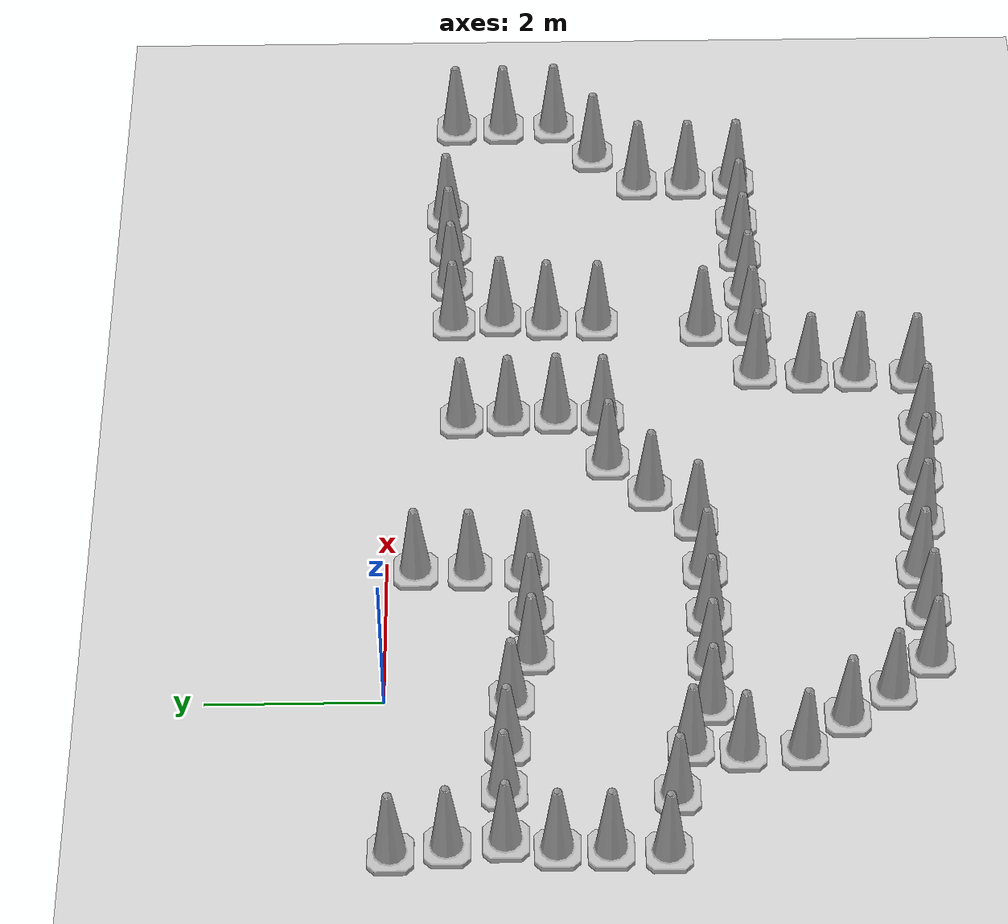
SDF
<sdf version="1.7">
 <world name="default">
  <model name="ground_plane">
   <static>1</static>
   <link name="link">
    <collision name="collision">
     <geometry><plane><normal>0 0 1</normal><size>100 100</size></plane></geometry>
     <surface>
      <contact><collide_bitmask>65535</collide_bitmask></contact>
      <friction><ode><mu>100</mu><mu2>50</mu2></ode></friction>
     </surface>
    </collision>
    <visual name="visual">
     <cast_shadows>0</cast_shadows>
     <geometry><plane><normal>0 0 1</normal><size>100 100</size></plane></geometry>
     <material>
      <script><uri>file://media/materials/scripts/gazebo.material</uri><name>Gazebo/Grey</name></script>
     </material>
    </visual>
   </link>
  </model>
  <model name="Construction Cone">
   <link name="link">
    <collision name="collision">
     <geometry>
      <mesh><scale>10 10 10</scale><uri>model://construction_cone/meshes/construction_cone.dae</uri></mesh>
     </geometry>
    </collision>
    <visual name="visual">
     <geometry>
      <mesh><scale>10 10 10</scale><uri>model://construction_cone/meshes/construction_cone.dae</uri></mesh>
     </geometry>
    </visual>
    <inertial>
     <inertia><ixx>1</ixx><ixy>0</ixy><ixz>0</ixz><iyy>1</iyy><iyz>0</iyz><izz>1</izz></inertia>
     <mass>1</mass>
    </inertial>
   </link>
   <pose>-0.005243 -1.40875 -0 0 -1e-06 0</pose>
  </model>
  <model name="Construction Cone_0">
   <link name="link">
    <collision name="collision">
     <geometry>
      <mesh><scale>10 10 10</scale><uri>model://construction_cone/meshes/construction_cone.dae</uri></mesh>
     </geometry>
    </collision>
    <visual name="visual">
     <geometry>
      <mesh><scale>10 10 10</scale><uri>model://construction_cone/meshes/construction_cone.dae</uri></mesh>
     </geometry>
    </visual>
    <inertial>
     <inertia><ixx>1</ixx><ixy>0</ixy><ixz>0</ixz><iyy>1</iyy><iyz>0</iyz><izz>1</izz></inertia>
     <mass>1</mass>
    </inertial>
   </link>
   <pose>1.20298 -1.63455 -0 0 -1e-06 0</pose>
  </model>
  <model name="Construction Cone_1">
   <link name="link">
    <collision name="collision">
     <geometry>
      <mesh><scale>10 10 10</scale><uri>model://construction_cone/meshes/construction_cone.dae</uri></mesh>
     </geometry>
    </collision>
    <visual name="visual">
     <geometry>
      <mesh><scale>10 10 10</scale><uri>model://construction_cone/meshes/construction_cone.dae</uri></mesh>
     </geometry>
    </visual>
    <inertial>
     <inertia><ixx>1</ixx><ixy>0</ixy><ixz>0</ixz><iyy>1</iyy><iyz>0</iyz><izz>1</izz></inertia>
     <mass>1</mass>
    </inertial>
   </link>
   <pose>1.82506 -1.59296 -0 0 -0 0</pose>
  </model>
  <model name="Construction Cone_2">
   <link name="link">
    <collision name="collision">
     <geometry>
      <mesh><scale>10 10 10</scale><uri>model://construction_cone/meshes/construction_cone.dae</uri></mesh>
     </geometry>
    </collision>
    <visual name="visual">
     <geometry>
      <mesh><scale>10 10 10</scale><uri>model://construction_cone/meshes/construction_cone.dae</uri></mesh>
     </geometry>
    </visual>
    <inertial>
     <inertia><ixx>1</ixx><ixy>0</ixy><ixz>0</ixz><iyy>1</iyy><iyz>0</iyz><izz>1</izz></inertia>
     <mass>1</mass>
    </inertial>
   </link>
   <pose>0.620982 -1.63538 -0 0 -0 0</pose>
  </model>
  <model name="Construction Cone_3">
   <link name="link">
    <collision name="collision">
     <geometry>
      <mesh><scale>10 10 10</scale><uri>model://construction_cone/meshes/construction_cone.dae</uri></mesh>
     </geometry>
    </collision>
    <visual name="visual">
     <geometry>
      <mesh><scale>10 10 10</scale><uri>model://construction_cone/meshes/construction_cone.dae</uri></mesh>
     </geometry>
    </visual>
    <inertial>
     <inertia><ixx>1</ixx><ixy>0</ixy><ixz>0</ixz><iyy>1</iyy><iyz>0</iyz><izz>1</izz></inertia>
     <mass>1</mass>
    </inertial>
   </link>
   <pose>-0.64154 -1.35793 -0 0 -1e-06 0</pose>
  </model>
  <model name="Construction Cone_4">
   <link name="link">
    <collision name="collision">
     <geometry>
      <mesh><scale>10 10 10</scale><uri>model://construction_cone/meshes/construction_cone.dae</uri></mesh>
     </geometry>
    </collision>
    <visual name="visual">
     <geometry>
      <mesh><scale>10 10 10</scale><uri>model://construction_cone/meshes/construction_cone.dae</uri></mesh>
     </geometry>
    </visual>
    <inertial>
     <inertia><ixx>1</ixx><ixy>0</ixy><ixz>0</ixz><iyy>1</iyy><iyz>0</iyz><izz>1</izz></inertia>
     <mass>1</mass>
    </inertial>
   </link>
   <pose>-1.24859 -1.32205 -0 0 -0 0</pose>
  </model>
  <model name="Construction Cone_5">
   <link name="link">
    <collision name="collision">
     <geometry>
      <mesh><scale>10 10 10</scale><uri>model://construction_cone/meshes/construction_cone.dae</uri></mesh>
     </geometry>
    </collision>
    <visual name="visual">
     <geometry>
      <mesh><scale>10 10 10</scale><uri>model://construction_cone/meshes/construction_cone.dae</uri></mesh>
     </geometry>
    </visual>
    <inertial>
     <inertia><ixx>1</ixx><ixy>0</ixy><ixz>0</ixz><iyy>1</iyy><iyz>0</iyz><izz>1</izz></inertia>
     <mass>1</mass>
    </inertial>
   </link>
   <pose>-1.91656 -1.33623 -0 -0 -0 -0</pose>
  </model>
  <model name="Construction Cone_6">
   <link name="link">
    <collision name="collision">
     <geometry>
      <mesh><scale>10 10 10</scale><uri>model://construction_cone/meshes/construction_cone.dae</uri></mesh>
     </geometry>
    </collision>
    <visual name="visual">
     <geometry>
      <mesh><scale>10 10 10</scale><uri>model://construction_cone/meshes/construction_cone.dae</uri></mesh>
     </geometry>
    </visual>
    <inertial>
     <inertia><ixx>1</ixx><ixy>0</ixy><ixz>0</ixz><iyy>1</iyy><iyz>0</iyz><izz>1</izz></inertia>
     <mass>1</mass>
    </inertial>
   </link>
   <pose>-1.98763 -0.706466 -0 0 -0 0</pose>
  </model>
  <model name="Construction Cone_7">
   <link name="link">
    <collision name="collision">
     <geometry>
      <mesh><scale>10 10 10</scale><uri>model://construction_cone/meshes/construction_cone.dae</uri></mesh>
     </geometry>
    </collision>
    <visual name="visual">
     <geometry>
      <mesh><scale>10 10 10</scale><uri>model://construction_cone/meshes/construction_cone.dae</uri></mesh>
     </geometry>
    </visual>
    <inertial>
     <inertia><ixx>1</ixx><ixy>0</ixy><ixz>0</ixz><iyy>1</iyy><iyz>0</iyz><izz>1</izz></inertia>
     <mass>1</mass>
    </inertial>
   </link>
   <pose>-2.06657 -0.099365 -0 0 -0 0</pose>
  </model>
  <model name="Construction Cone_10">
   <link name="link">
    <collision name="collision">
     <geometry>
      <mesh><scale>10 10 10</scale><uri>model://construction_cone/meshes/construction_cone.dae</uri></mesh>
     </geometry>
    </collision>
    <visual name="visual">
     <geometry>
      <mesh><scale>10 10 10</scale><uri>model://construction_cone/meshes/construction_cone.dae</uri></mesh>
     </geometry>
    </visual>
    <inertial>
     <inertia><ixx>1</ixx><ixy>0</ixy><ixz>0</ixz><iyy>1</iyy><iyz>0</iyz><izz>1</izz></inertia>
     <mass>1</mass>
    </inertial>
   </link>
   <pose>1.85068 -0.9436 -0 0 -0 0</pose>
  </model>
  <model name="Construction Cone_11">
   <link name="link">
    <collision name="collision">
     <geometry>
      <mesh><scale>10 10 10</scale><uri>model://construction_cone/meshes/construction_cone.dae</uri></mesh>
     </geometry>
    </collision>
    <visual name="visual">
     <geometry>
      <mesh><scale>10 10 10</scale><uri>model://construction_cone/meshes/construction_cone.dae</uri></mesh>
     </geometry>
    </visual>
    <inertial>
     <inertia><ixx>1</ixx><ixy>0</ixy><ixz>0</ixz><iyy>1</iyy><iyz>0</iyz><izz>1</izz></inertia>
     <mass>1</mass>
    </inertial>
   </link>
   <pose>1.8693 -0.324364 -0 0 -0 0</pose>
  </model>
  <model name="Construction Cone_32">
   <link name="link">
    <collision name="collision">
     <geometry>
      <mesh><scale>10 10 10</scale><uri>model://construction_cone/meshes/construction_cone.dae</uri></mesh>
     </geometry>
    </collision>
    <visual name="visual">
     <geometry>
      <mesh><scale>10 10 10</scale><uri>model://construction_cone/meshes/construction_cone.dae</uri></mesh>
     </geometry>
    </visual>
    <inertial>
     <inertia><ixx>1</ixx><ixy>0</ixy><ixz>0</ixz><iyy>1</iyy><iyz>0</iyz><izz>1</izz></inertia>
     <mass>1</mass>
    </inertial>
   </link>
   <pose>4.18784 -0.837495 -0 0 -0 0</pose>
  </model>
  <model name="Construction Cone_33">
   <link name="link">
    <collision name="collision">
     <geometry>
      <mesh><scale>10 10 10</scale><uri>model://construction_cone/meshes/construction_cone.dae</uri></mesh>
     </geometry>
    </collision>
    <visual name="visual">
     <geometry>
      <mesh><scale>10 10 10</scale><uri>model://construction_cone/meshes/construction_cone.dae</uri></mesh>
     </geometry>
    </visual>
    <inertial>
     <inertia><ixx>1</ixx><ixy>0</ixy><ixz>0</ixz><iyy>1</iyy><iyz>0</iyz><izz>1</izz></inertia>
     <mass>1</mass>
    </inertial>
   </link>
   <pose>4.21705 -1.39268 -0 0 -0 0</pose>
  </model>
  <model name="Construction Cone_34">
   <link name="link">
    <collision name="collision">
     <geometry>
      <mesh><scale>10 10 10</scale><uri>model://construction_cone/meshes/construction_cone.dae</uri></mesh>
     </geometry>
    </collision>
    <visual name="visual">
     <geometry>
      <mesh><scale>10 10 10</scale><uri>model://construction_cone/meshes/construction_cone.dae</uri></mesh>
     </geometry>
    </visual>
    <inertial>
     <inertia><ixx>1</ixx><ixy>0</ixy><ixz>0</ixz><iyy>1</iyy><iyz>0</iyz><izz>1</izz></inertia>
     <mass>1</mass>
    </inertial>
   </link>
   <pose>4.23931 -1.95743 -0 0 -0 0</pose>
  </model>
  <model name="Construction Cone_35">
   <link name="link">
    <collision name="collision">
     <geometry>
      <mesh><scale>10 10 10</scale><uri>model://construction_cone/meshes/construction_cone.dae</uri></mesh>
     </geometry>
    </collision>
    <visual name="visual">
     <geometry>
      <mesh><scale>10 10 10</scale><uri>model://construction_cone/meshes/construction_cone.dae</uri></mesh>
     </geometry>
    </visual>
    <inertial>
     <inertia><ixx>1</ixx><ixy>0</ixy><ixz>0</ixz><iyy>1</iyy><iyz>0</iyz><izz>1</izz></inertia>
     <mass>1</mass>
    </inertial>
   </link>
   <pose>4.21293 -2.50767 -0 0 -0 0</pose>
  </model>
  <model name="Construction Cone_36">
   <link name="link">
    <collision name="collision">
     <geometry>
      <mesh><scale>10 10 10</scale><uri>model://construction_cone/meshes/construction_cone.dae</uri></mesh>
     </geometry>
    </collision>
    <visual name="visual">
     <geometry>
      <mesh><scale>10 10 10</scale><uri>model://construction_cone/meshes/construction_cone.dae</uri></mesh>
     </geometry>
    </visual>
    <inertial>
     <inertia><ixx>1</ixx><ixy>0</ixy><ixz>0</ixz><iyy>1</iyy><iyz>0</iyz><izz>1</izz></inertia>
     <mass>1</mass>
    </inertial>
   </link>
   <pose>3.50327 -2.5545 -0 0 -0 0</pose>
  </model>
  <model name="Construction Cone_37">
   <link name="link">
    <collision name="collision">
     <geometry>
      <mesh><scale>10 10 10</scale><uri>model://construction_cone/meshes/construction_cone.dae</uri></mesh>
     </geometry>
    </collision>
    <visual name="visual">
     <geometry>
      <mesh><scale>10 10 10</scale><uri>model://construction_cone/meshes/construction_cone.dae</uri></mesh>
     </geometry>
    </visual>
    <inertial>
     <inertia><ixx>1</ixx><ixy>0</ixy><ixz>0</ixz><iyy>1</iyy><iyz>0</iyz><izz>1</izz></inertia>
     <mass>1</mass>
    </inertial>
   </link>
   <pose>3.01779 -3.03425 -0 0 -0 0</pose>
  </model>
  <model name="Construction Cone_38">
   <link name="link">
    <collision name="collision">
     <geometry>
      <mesh><scale>10 10 10</scale><uri>model://construction_cone/meshes/construction_cone.dae</uri></mesh>
     </geometry>
    </collision>
    <visual name="visual">
     <geometry>
      <mesh><scale>10 10 10</scale><uri>model://construction_cone/meshes/construction_cone.dae</uri></mesh>
     </geometry>
    </visual>
    <inertial>
     <inertia><ixx>1</ixx><ixy>0</ixy><ixz>0</ixz><iyy>1</iyy><iyz>0</iyz><izz>1</izz></inertia>
     <mass>1</mass>
    </inertial>
   </link>
   <pose>2.55423 -3.55356 -0 0 -0 0</pose>
  </model>
  <model name="Construction Cone_39">
   <link name="link">
    <collision name="collision">
     <geometry>
      <mesh><scale>10 10 10</scale><uri>model://construction_cone/meshes/construction_cone.dae</uri></mesh>
     </geometry>
    </collision>
    <visual name="visual">
     <geometry>
      <mesh><scale>10 10 10</scale><uri>model://construction_cone/meshes/construction_cone.dae</uri></mesh>
     </geometry>
    </visual>
    <inertial>
     <inertia><ixx>1</ixx><ixy>0</ixy><ixz>0</ixz><iyy>1</iyy><iyz>0</iyz><izz>1</izz></inertia>
     <mass>1</mass>
    </inertial>
   </link>
   <pose>1.8326 -3.62864 -0 0 -0 0</pose>
  </model>
  <model name="Construction Cone_40">
   <link name="link">
    <collision name="collision">
     <geometry>
      <mesh><scale>10 10 10</scale><uri>model://construction_cone/meshes/construction_cone.dae</uri></mesh>
     </geometry>
    </collision>
    <visual name="visual">
     <geometry>
      <mesh><scale>10 10 10</scale><uri>model://construction_cone/meshes/construction_cone.dae</uri></mesh>
     </geometry>
    </visual>
    <inertial>
     <inertia><ixx>1</ixx><ixy>0</ixy><ixz>0</ixz><iyy>1</iyy><iyz>0</iyz><izz>1</izz></inertia>
     <mass>1</mass>
    </inertial>
   </link>
   <pose>1.15052 -3.64418 -0 0 -0 0</pose>
  </model>
  <model name="Construction Cone_41">
   <link name="link">
    <collision name="collision">
     <geometry>
      <mesh><scale>10 10 10</scale><uri>model://construction_cone/meshes/construction_cone.dae</uri></mesh>
     </geometry>
    </collision>
    <visual name="visual">
     <geometry>
      <mesh><scale>10 10 10</scale><uri>model://construction_cone/meshes/construction_cone.dae</uri></mesh>
     </geometry>
    </visual>
    <inertial>
     <inertia><ixx>1</ixx><ixy>0</ixy><ixz>0</ixz><iyy>1</iyy><iyz>0</iyz><izz>1</izz></inertia>
     <mass>1</mass>
    </inertial>
   </link>
   <pose>0.522567 -3.63244 -0 0 -0 0</pose>
  </model>
  <model name="Construction Cone_42">
   <link name="link">
    <collision name="collision">
     <geometry>
      <mesh><scale>10 10 10</scale><uri>model://construction_cone/meshes/construction_cone.dae</uri></mesh>
     </geometry>
    </collision>
    <visual name="visual">
     <geometry>
      <mesh><scale>10 10 10</scale><uri>model://construction_cone/meshes/construction_cone.dae</uri></mesh>
     </geometry>
    </visual>
    <inertial>
     <inertia><ixx>1</ixx><ixy>0</ixy><ixz>0</ixz><iyy>1</iyy><iyz>0</iyz><izz>1</izz></inertia>
     <mass>1</mass>
    </inertial>
   </link>
   <pose>-0.11417 -3.60963 -0 0 -0 0</pose>
  </model>
  <model name="Construction Cone_43">
   <link name="link">
    <collision name="collision">
     <geometry>
      <mesh><scale>10 10 10</scale><uri>model://construction_cone/meshes/construction_cone.dae</uri></mesh>
     </geometry>
    </collision>
    <visual name="visual">
     <geometry>
      <mesh><scale>10 10 10</scale><uri>model://construction_cone/meshes/construction_cone.dae</uri></mesh>
     </geometry>
    </visual>
    <inertial>
     <inertia><ixx>1</ixx><ixy>0</ixy><ixz>0</ixz><iyy>1</iyy><iyz>0</iyz><izz>1</izz></inertia>
     <mass>1</mass>
    </inertial>
   </link>
   <pose>-0.6716 -3.36913 -0 0 -0 0</pose>
  </model>
  <model name="Construction Cone_44">
   <link name="link">
    <collision name="collision">
     <geometry>
      <mesh><scale>10 10 10</scale><uri>model://construction_cone/meshes/construction_cone.dae</uri></mesh>
     </geometry>
    </collision>
    <visual name="visual">
     <geometry>
      <mesh><scale>10 10 10</scale><uri>model://construction_cone/meshes/construction_cone.dae</uri></mesh>
     </geometry>
    </visual>
    <inertial>
     <inertia><ixx>1</ixx><ixy>0</ixy><ixz>0</ixz><iyy>1</iyy><iyz>0</iyz><izz>1</izz></inertia>
     <mass>1</mass>
    </inertial>
   </link>
   <pose>-1.32869 -3.20085 -0 0 -0 0</pose>
  </model>
  <model name="Construction Cone_45">
   <link name="link">
    <collision name="collision">
     <geometry>
      <mesh><scale>10 10 10</scale><uri>model://construction_cone/meshes/construction_cone.dae</uri></mesh>
     </geometry>
    </collision>
    <visual name="visual">
     <geometry>
      <mesh><scale>10 10 10</scale><uri>model://construction_cone/meshes/construction_cone.dae</uri></mesh>
     </geometry>
    </visual>
    <inertial>
     <inertia><ixx>1</ixx><ixy>0</ixy><ixz>0</ixz><iyy>1</iyy><iyz>0</iyz><izz>1</izz></inertia>
     <mass>1</mass>
    </inertial>
   </link>
   <pose>-2.0894 -3.0832 -0 0 -0 0</pose>
  </model>
  <model name="Construction Cone_46">
   <link name="link">
    <collision name="collision">
     <geometry>
      <mesh><scale>10 10 10</scale><uri>model://construction_cone/meshes/construction_cone.dae</uri></mesh>
     </geometry>
    </collision>
    <visual name="visual">
     <geometry>
      <mesh><scale>10 10 10</scale><uri>model://construction_cone/meshes/construction_cone.dae</uri></mesh>
     </geometry>
    </visual>
    <inertial>
     <inertia><ixx>1</ixx><ixy>0</ixy><ixz>0</ixz><iyy>1</iyy><iyz>0</iyz><izz>1</izz></inertia>
     <mass>1</mass>
    </inertial>
   </link>
   <pose>-2.04766 -2.46294 -0 0 -0 0</pose>
  </model>
  <model name="Construction Cone_47">
   <link name="link">
    <collision name="collision">
     <geometry>
      <mesh><scale>10 10 10</scale><uri>model://construction_cone/meshes/construction_cone.dae</uri></mesh>
     </geometry>
    </collision>
    <visual name="visual">
     <geometry>
      <mesh><scale>10 10 10</scale><uri>model://construction_cone/meshes/construction_cone.dae</uri></mesh>
     </geometry>
    </visual>
    <inertial>
     <inertia><ixx>1</ixx><ixy>0</ixy><ixz>0</ixz><iyy>1</iyy><iyz>0</iyz><izz>1</izz></inertia>
     <mass>1</mass>
    </inertial>
   </link>
   <pose>-2.03792 -1.88744 -0 0 -0 0</pose>
  </model>
  <model name="Construction Cone_49">
   <link name="link">
    <collision name="collision">
     <geometry>
      <mesh><scale>10 10 10</scale><uri>model://construction_cone/meshes/construction_cone.dae</uri></mesh>
     </geometry>
    </collision>
    <visual name="visual">
     <geometry>
      <mesh><scale>10 10 10</scale><uri>model://construction_cone/meshes/construction_cone.dae</uri></mesh>
     </geometry>
    </visual>
    <inertial>
     <inertia><ixx>1</ixx><ixy>0</ixy><ixz>0</ixz><iyy>1</iyy><iyz>0</iyz><izz>1</izz></inertia>
     <mass>1</mass>
    </inertial>
   </link>
   <pose>5.78226 -0.740179 -0 0 -0 0</pose>
  </model>
  <model name="Construction Cone_50">
   <link name="link">
    <collision name="collision">
     <geometry>
      <mesh><scale>10 10 10</scale><uri>model://construction_cone/meshes/construction_cone.dae</uri></mesh>
     </geometry>
    </collision>
    <visual name="visual">
     <geometry>
      <mesh><scale>10 10 10</scale><uri>model://construction_cone/meshes/construction_cone.dae</uri></mesh>
     </geometry>
    </visual>
    <inertial>
     <inertia><ixx>1</ixx><ixy>0</ixy><ixz>0</ixz><iyy>1</iyy><iyz>0</iyz><izz>1</izz></inertia>
     <mass>1</mass>
    </inertial>
   </link>
   <pose>5.8438 -1.30153 -0 0 -1e-06 0</pose>
  </model>
  <model name="Construction Cone_51">
   <link name="link">
    <collision name="collision">
     <geometry>
      <mesh><scale>10 10 10</scale><uri>model://construction_cone/meshes/construction_cone.dae</uri></mesh>
     </geometry>
    </collision>
    <visual name="visual">
     <geometry>
      <mesh><scale>10 10 10</scale><uri>model://construction_cone/meshes/construction_cone.dae</uri></mesh>
     </geometry>
    </visual>
    <inertial>
     <inertia><ixx>1</ixx><ixy>0</ixy><ixz>0</ixz><iyy>1</iyy><iyz>0</iyz><izz>1</izz></inertia>
     <mass>1</mass>
    </inertial>
   </link>
   <pose>6.45008 -0.71454 -0 0 -1e-06 0</pose>
  </model>
  <model name="Construction Cone_54">
   <link name="link">
    <collision name="collision">
     <geometry>
      <mesh><scale>10 10 10</scale><uri>model://construction_cone/meshes/construction_cone.dae</uri></mesh>
     </geometry>
    </collision>
    <visual name="visual">
     <geometry>
      <mesh><scale>10 10 10</scale><uri>model://construction_cone/meshes/construction_cone.dae</uri></mesh>
     </geometry>
    </visual>
    <inertial>
     <inertia><ixx>1</ixx><ixy>0</ixy><ixz>0</ixz><iyy>1</iyy><iyz>0</iyz><izz>1</izz></inertia>
     <mass>1</mass>
    </inertial>
   </link>
   <pose>7.05494 -0.687244 -0 0 -0 0</pose>
  </model>
  <model name="Construction Cone_55">
   <link name="link">
    <collision name="collision">
     <geometry>
      <mesh><scale>10 10 10</scale><uri>model://construction_cone/meshes/construction_cone.dae</uri></mesh>
     </geometry>
    </collision>
    <visual name="visual">
     <geometry>
      <mesh><scale>10 10 10</scale><uri>model://construction_cone/meshes/construction_cone.dae</uri></mesh>
     </geometry>
    </visual>
    <inertial>
     <inertia><ixx>1</ixx><ixy>0</ixy><ixz>0</ixz><iyy>1</iyy><iyz>0</iyz><izz>1</izz></inertia>
     <mass>1</mass>
    </inertial>
   </link>
   <pose>7.64263 -0.654383 -0 0 -0 0</pose>
  </model>
  <model name="Construction Cone_56">
   <link name="link">
    <collision name="collision">
     <geometry>
      <mesh><scale>10 10 10</scale><uri>model://construction_cone/meshes/construction_cone.dae</uri></mesh>
     </geometry>
    </collision>
    <visual name="visual">
     <geometry>
      <mesh><scale>10 10 10</scale><uri>model://construction_cone/meshes/construction_cone.dae</uri></mesh>
     </geometry>
    </visual>
    <inertial>
     <inertia><ixx>1</ixx><ixy>0</ixy><ixz>0</ixz><iyy>1</iyy><iyz>0</iyz><izz>1</izz></inertia>
     <mass>1</mass>
    </inertial>
   </link>
   <pose>5.77332 -1.86627 -0 0 -1e-06 0</pose>
  </model>
  <model name="Construction Cone_57">
   <link name="link">
    <collision name="collision">
     <geometry>
      <mesh><scale>10 10 10</scale><uri>model://construction_cone/meshes/construction_cone.dae</uri></mesh>
     </geometry>
    </collision>
    <visual name="visual">
     <geometry>
      <mesh><scale>10 10 10</scale><uri>model://construction_cone/meshes/construction_cone.dae</uri></mesh>
     </geometry>
    </visual>
    <inertial>
     <inertia><ixx>1</ixx><ixy>0</ixy><ixz>0</ixz><iyy>1</iyy><iyz>0</iyz><izz>1</izz></inertia>
     <mass>1</mass>
    </inertial>
   </link>
   <pose>5.75136 -2.47488 -0 0 -0 0</pose>
  </model>
  <model name="Construction Cone_64">
   <link name="link">
    <collision name="collision">
     <geometry>
      <mesh><scale>10 10 10</scale><uri>model://construction_cone/meshes/construction_cone.dae</uri></mesh>
     </geometry>
    </collision>
    <visual name="visual">
     <geometry>
      <mesh><scale>10 10 10</scale><uri>model://construction_cone/meshes/construction_cone.dae</uri></mesh>
     </geometry>
    </visual>
    <inertial>
     <inertia><ixx>1</ixx><ixy>0</ixy><ixz>0</ixz><iyy>1</iyy><iyz>0</iyz><izz>1</izz></inertia>
     <mass>1</mass>
    </inertial>
   </link>
   <pose>5.64487 -3.73638 -0 0 -1e-06 0</pose>
  </model>
  <model name="Construction Cone_65">
   <link name="link">
    <collision name="collision">
     <geometry>
      <mesh><scale>10 10 10</scale><uri>model://construction_cone/meshes/construction_cone.dae</uri></mesh>
     </geometry>
    </collision>
    <visual name="visual">
     <geometry>
      <mesh><scale>10 10 10</scale><uri>model://construction_cone/meshes/construction_cone.dae</uri></mesh>
     </geometry>
    </visual>
    <inertial>
     <inertia><ixx>1</ixx><ixy>0</ixy><ixz>0</ixz><iyy>1</iyy><iyz>0</iyz><izz>1</izz></inertia>
     <mass>1</mass>
    </inertial>
   </link>
   <pose>5.64718 -4.32758 -0 0 -0 0</pose>
  </model>
  <model name="Construction Cone_66">
   <link name="link">
    <collision name="collision">
     <geometry>
      <mesh><scale>10 10 10</scale><uri>model://construction_cone/meshes/construction_cone.dae</uri></mesh>
     </geometry>
    </collision>
    <visual name="visual">
     <geometry>
      <mesh><scale>10 10 10</scale><uri>model://construction_cone/meshes/construction_cone.dae</uri></mesh>
     </geometry>
    </visual>
    <inertial>
     <inertia><ixx>1</ixx><ixy>0</ixy><ixz>0</ixz><iyy>1</iyy><iyz>0</iyz><izz>1</izz></inertia>
     <mass>1</mass>
    </inertial>
   </link>
   <pose>6.24476 -4.30493 -0 0 -1e-06 0</pose>
  </model>
  <model name="Construction Cone_67">
   <link name="link">
    <collision name="collision">
     <geometry>
      <mesh><scale>10 10 10</scale><uri>model://construction_cone/meshes/construction_cone.dae</uri></mesh>
     </geometry>
    </collision>
    <visual name="visual">
     <geometry>
      <mesh><scale>10 10 10</scale><uri>model://construction_cone/meshes/construction_cone.dae</uri></mesh>
     </geometry>
    </visual>
    <inertial>
     <inertia><ixx>1</ixx><ixy>0</ixy><ixz>0</ixz><iyy>1</iyy><iyz>0</iyz><izz>1</izz></inertia>
     <mass>1</mass>
    </inertial>
   </link>
   <pose>6.90155 -4.27025 -0 0 -1e-06 0</pose>
  </model>
  <model name="Construction Cone_68">
   <link name="link">
    <collision name="collision">
     <geometry>
      <mesh><scale>10 10 10</scale><uri>model://construction_cone/meshes/construction_cone.dae</uri></mesh>
     </geometry>
    </collision>
    <visual name="visual">
     <geometry>
      <mesh><scale>10 10 10</scale><uri>model://construction_cone/meshes/construction_cone.dae</uri></mesh>
     </geometry>
    </visual>
    <inertial>
     <inertia><ixx>1</ixx><ixy>0</ixy><ixz>0</ixz><iyy>1</iyy><iyz>0</iyz><izz>1</izz></inertia>
     <mass>1</mass>
    </inertial>
   </link>
   <pose>7.48879 -4.25329 -0 0 -1e-06 0</pose>
  </model>
  <model name="Construction Cone_69">
   <link name="link">
    <collision name="collision">
     <geometry>
      <mesh><scale>10 10 10</scale><uri>model://construction_cone/meshes/construction_cone.dae</uri></mesh>
     </geometry>
    </collision>
    <visual name="visual">
     <geometry>
      <mesh><scale>10 10 10</scale><uri>model://construction_cone/meshes/construction_cone.dae</uri></mesh>
     </geometry>
    </visual>
    <inertial>
     <inertia><ixx>1</ixx><ixy>0</ixy><ixz>0</ixz><iyy>1</iyy><iyz>0</iyz><izz>1</izz></inertia>
     <mass>1</mass>
    </inertial>
   </link>
   <pose>8.19446 -4.24738 -0 0 -1e-06 0</pose>
  </model>
  <model name="Construction Cone_70">
   <link name="link">
    <collision name="collision">
     <geometry>
      <mesh><scale>10 10 10</scale><uri>model://construction_cone/meshes/construction_cone.dae</uri></mesh>
     </geometry>
    </collision>
    <visual name="visual">
     <geometry>
      <mesh><scale>10 10 10</scale><uri>model://construction_cone/meshes/construction_cone.dae</uri></mesh>
     </geometry>
    </visual>
    <inertial>
     <inertia><ixx>1</ixx><ixy>0</ixy><ixz>0</ixz><iyy>1</iyy><iyz>0</iyz><izz>1</izz></inertia>
     <mass>1</mass>
    </inertial>
   </link>
   <pose>8.18788 -3.64559 -0 0 -0 0</pose>
  </model>
  <model name="Construction Cone_71">
   <link name="link">
    <collision name="collision">
     <geometry>
      <mesh><scale>10 10 10</scale><uri>model://construction_cone/meshes/construction_cone.dae</uri></mesh>
     </geometry>
    </collision>
    <visual name="visual">
     <geometry>
      <mesh><scale>10 10 10</scale><uri>model://construction_cone/meshes/construction_cone.dae</uri></mesh>
     </geometry>
    </visual>
    <inertial>
     <inertia><ixx>1</ixx><ixy>0</ixy><ixz>0</ixz><iyy>1</iyy><iyz>0</iyz><izz>1</izz></inertia>
     <mass>1</mass>
    </inertial>
   </link>
   <pose>8.18697 -3.02915 -0 0 -1e-06 0</pose>
  </model>
  <model name="Construction Cone_72">
   <link name="link">
    <collision name="collision">
     <geometry>
      <mesh><scale>10 10 10</scale><uri>model://construction_cone/meshes/construction_cone.dae</uri></mesh>
     </geometry>
    </collision>
    <visual name="visual">
     <geometry>
      <mesh><scale>10 10 10</scale><uri>model://construction_cone/meshes/construction_cone.dae</uri></mesh>
     </geometry>
    </visual>
    <inertial>
     <inertia><ixx>1</ixx><ixy>0</ixy><ixz>0</ixz><iyy>1</iyy><iyz>0</iyz><izz>1</izz></inertia>
     <mass>1</mass>
    </inertial>
   </link>
   <pose>8.70114 -2.48312 -0 0 -0 0</pose>
  </model>
  <model name="Construction Cone_73">
   <link name="link">
    <collision name="collision">
     <geometry>
      <mesh><scale>10 10 10</scale><uri>model://construction_cone/meshes/construction_cone.dae</uri></mesh>
     </geometry>
    </collision>
    <visual name="visual">
     <geometry>
      <mesh><scale>10 10 10</scale><uri>model://construction_cone/meshes/construction_cone.dae</uri></mesh>
     </geometry>
    </visual>
    <inertial>
     <inertia><ixx>1</ixx><ixy>0</ixy><ixz>0</ixz><iyy>1</iyy><iyz>0</iyz><izz>1</izz></inertia>
     <mass>1</mass>
    </inertial>
   </link>
   <pose>9.24621 -1.9988 -0 0 -1e-06 0</pose>
  </model>
  <model name="Construction Cone_74">
   <link name="link">
    <collision name="collision">
     <geometry>
      <mesh><scale>10 10 10</scale><uri>model://construction_cone/meshes/construction_cone.dae</uri></mesh>
     </geometry>
    </collision>
    <visual name="visual">
     <geometry>
      <mesh><scale>10 10 10</scale><uri>model://construction_cone/meshes/construction_cone.dae</uri></mesh>
     </geometry>
    </visual>
    <inertial>
     <inertia><ixx>1</ixx><ixy>0</ixy><ixz>0</ixz><iyy>1</iyy><iyz>0</iyz><izz>1</izz></inertia>
     <mass>1</mass>
    </inertial>
   </link>
   <pose>9.23075 -1.35834 -0 0 -1e-06 0</pose>
  </model>
  <model name="Construction Cone_75">
   <link name="link">
    <collision name="collision">
     <geometry>
      <mesh><scale>10 10 10</scale><uri>model://construction_cone/meshes/construction_cone.dae</uri></mesh>
     </geometry>
    </collision>
    <visual name="visual">
     <geometry>
      <mesh><scale>10 10 10</scale><uri>model://construction_cone/meshes/construction_cone.dae</uri></mesh>
     </geometry>
    </visual>
    <inertial>
     <inertia><ixx>1</ixx><ixy>0</ixy><ixz>0</ixz><iyy>1</iyy><iyz>0</iyz><izz>1</izz></inertia>
     <mass>1</mass>
    </inertial>
   </link>
   <pose>9.22109 -0.762641 -0 0 -1e-06 0</pose>
  </model>
  <model name="Construction Cone_106">
   <link name="link">
    <collision name="collision">
     <geometry>
      <mesh><scale>10 10 10</scale><uri>model://construction_cone/meshes/construction_cone.dae</uri></mesh>
     </geometry>
    </collision>
    <visual name="visual">
     <geometry>
      <mesh><scale>10 10 10</scale><uri>model://construction_cone/meshes/construction_cone.dae</uri></mesh>
     </geometry>
    </visual>
    <inertial>
     <inertia><ixx>1</ixx><ixy>0</ixy><ixz>0</ixz><iyy>1</iyy><iyz>0</iyz><izz>1</izz></inertia>
     <mass>1</mass>
    </inertial>
   </link>
   <pose>4.92227 -4.35611 -0 0 -0 0</pose>
  </model>
  <model name="Construction Cone_107">
   <link name="link">
    <collision name="collision">
     <geometry>
      <mesh><scale>10 10 10</scale><uri>model://construction_cone/meshes/construction_cone.dae</uri></mesh>
     </geometry>
    </collision>
    <visual name="visual">
     <geometry>
      <mesh><scale>10 10 10</scale><uri>model://construction_cone/meshes/construction_cone.dae</uri></mesh>
     </geometry>
    </visual>
    <inertial>
     <inertia><ixx>1</ixx><ixy>0</ixy><ixz>0</ixz><iyy>1</iyy><iyz>0</iyz><izz>1</izz></inertia>
     <mass>1</mass>
    </inertial>
   </link>
   <pose>4.85095 -4.97777 -0 0 -1e-06 0</pose>
  </model>
  <model name="Construction Cone_108">
   <link name="link">
    <collision name="collision">
     <geometry>
      <mesh><scale>10 10 10</scale><uri>model://construction_cone/meshes/construction_cone.dae</uri></mesh>
     </geometry>
    </collision>
    <visual name="visual">
     <geometry>
      <mesh><scale>10 10 10</scale><uri>model://construction_cone/meshes/construction_cone.dae</uri></mesh>
     </geometry>
    </visual>
    <inertial>
     <inertia><ixx>1</ixx><ixy>0</ixy><ixz>0</ixz><iyy>1</iyy><iyz>0</iyz><izz>1</izz></inertia>
     <mass>1</mass>
    </inertial>
   </link>
   <pose>4.86338 -5.55858 -0 0 -1e-06 0</pose>
  </model>
  <model name="Construction Cone_109">
   <link name="link">
    <collision name="collision">
     <geometry>
      <mesh><scale>10 10 10</scale><uri>model://construction_cone/meshes/construction_cone.dae</uri></mesh>
     </geometry>
    </collision>
    <visual name="visual">
     <geometry>
      <mesh><scale>10 10 10</scale><uri>model://construction_cone/meshes/construction_cone.dae</uri></mesh>
     </geometry>
    </visual>
    <inertial>
     <inertia><ixx>1</ixx><ixy>0</ixy><ixz>0</ixz><iyy>1</iyy><iyz>0</iyz><izz>1</izz></inertia>
     <mass>1</mass>
    </inertial>
   </link>
   <pose>4.82657 -6.22922 -0 0 -1e-06 0</pose>
  </model>
  <model name="Construction Cone_110">
   <link name="link">
    <collision name="collision">
     <geometry>
      <mesh><scale>10 10 10</scale><uri>model://construction_cone/meshes/construction_cone.dae</uri></mesh>
     </geometry>
    </collision>
    <visual name="visual">
     <geometry>
      <mesh><scale>10 10 10</scale><uri>model://construction_cone/meshes/construction_cone.dae</uri></mesh>
     </geometry>
    </visual>
    <inertial>
     <inertia><ixx>1</ixx><ixy>0</ixy><ixz>0</ixz><iyy>1</iyy><iyz>0</iyz><izz>1</izz></inertia>
     <mass>1</mass>
    </inertial>
   </link>
   <pose>3.9995 -6.27928 -0 0 -0 0</pose>
  </model>
  <model name="Construction Cone_111">
   <link name="link">
    <collision name="collision">
     <geometry>
      <mesh><scale>10 10 10</scale><uri>model://construction_cone/meshes/construction_cone.dae</uri></mesh>
     </geometry>
    </collision>
    <visual name="visual">
     <geometry>
      <mesh><scale>10 10 10</scale><uri>model://construction_cone/meshes/construction_cone.dae</uri></mesh>
     </geometry>
    </visual>
    <inertial>
     <inertia><ixx>1</ixx><ixy>0</ixy><ixz>0</ixz><iyy>1</iyy><iyz>0</iyz><izz>1</izz></inertia>
     <mass>1</mass>
    </inertial>
   </link>
   <pose>3.22971 -6.20844 -0 0 -0 0</pose>
  </model>
  <model name="Construction Cone_112">
   <link name="link">
    <collision name="collision">
     <geometry>
      <mesh><scale>10 10 10</scale><uri>model://construction_cone/meshes/construction_cone.dae</uri></mesh>
     </geometry>
    </collision>
    <visual name="visual">
     <geometry>
      <mesh><scale>10 10 10</scale><uri>model://construction_cone/meshes/construction_cone.dae</uri></mesh>
     </geometry>
    </visual>
    <inertial>
     <inertia><ixx>1</ixx><ixy>0</ixy><ixz>0</ixz><iyy>1</iyy><iyz>0</iyz><izz>1</izz></inertia>
     <mass>1</mass>
    </inertial>
   </link>
   <pose>2.53237 -6.16705 -0 0 -0 0</pose>
  </model>
  <model name="Construction Cone_113">
   <link name="link">
    <collision name="collision">
     <geometry>
      <mesh><scale>10 10 10</scale><uri>model://construction_cone/meshes/construction_cone.dae</uri></mesh>
     </geometry>
    </collision>
    <visual name="visual">
     <geometry>
      <mesh><scale>10 10 10</scale><uri>model://construction_cone/meshes/construction_cone.dae</uri></mesh>
     </geometry>
    </visual>
    <inertial>
     <inertia><ixx>1</ixx><ixy>0</ixy><ixz>0</ixz><iyy>1</iyy><iyz>0</iyz><izz>1</izz></inertia>
     <mass>1</mass>
    </inertial>
   </link>
   <pose>1.80715 -6.07938 -0 0 -1e-06 0</pose>
  </model>
  <model name="Construction Cone_114">
   <link name="link">
    <collision name="collision">
     <geometry>
      <mesh><scale>10 10 10</scale><uri>model://construction_cone/meshes/construction_cone.dae</uri></mesh>
     </geometry>
    </collision>
    <visual name="visual">
     <geometry>
      <mesh><scale>10 10 10</scale><uri>model://construction_cone/meshes/construction_cone.dae</uri></mesh>
     </geometry>
    </visual>
    <inertial>
     <inertia><ixx>1</ixx><ixy>0</ixy><ixz>0</ixz><iyy>1</iyy><iyz>0</iyz><izz>1</izz></inertia>
     <mass>1</mass>
    </inertial>
   </link>
   <pose>1.19846 -6.12547 -0 0 -0 0</pose>
  </model>
  <model name="Construction Cone_115">
   <link name="link">
    <collision name="collision">
     <geometry>
      <mesh><scale>10 10 10</scale><uri>model://construction_cone/meshes/construction_cone.dae</uri></mesh>
     </geometry>
    </collision>
    <visual name="visual">
     <geometry>
      <mesh><scale>10 10 10</scale><uri>model://construction_cone/meshes/construction_cone.dae</uri></mesh>
     </geometry>
    </visual>
    <inertial>
     <inertia><ixx>1</ixx><ixy>0</ixy><ixz>0</ixz><iyy>1</iyy><iyz>0</iyz><izz>1</izz></inertia>
     <mass>1</mass>
    </inertial>
   </link>
   <pose>0.510443 -6.11506 -0 0 -0 0</pose>
  </model>
  <model name="Construction Cone_116">
   <link name="link">
    <collision name="collision">
     <geometry>
      <mesh><scale>10 10 10</scale><uri>model://construction_cone/meshes/construction_cone.dae</uri></mesh>
     </geometry>
    </collision>
    <visual name="visual">
     <geometry>
      <mesh><scale>10 10 10</scale><uri>model://construction_cone/meshes/construction_cone.dae</uri></mesh>
     </geometry>
    </visual>
    <inertial>
     <inertia><ixx>1</ixx><ixy>0</ixy><ixz>0</ixz><iyy>1</iyy><iyz>0</iyz><izz>1</izz></inertia>
     <mass>1</mass>
    </inertial>
   </link>
   <pose>0.061963 -5.6476 -0 0 -0 0</pose>
  </model>
  <model name="Construction Cone_117">
   <link name="link">
    <collision name="collision">
     <geometry>
      <mesh><scale>10 10 10</scale><uri>model://construction_cone/meshes/construction_cone.dae</uri></mesh>
     </geometry>
    </collision>
    <visual name="visual">
     <geometry>
      <mesh><scale>10 10 10</scale><uri>model://construction_cone/meshes/construction_cone.dae</uri></mesh>
     </geometry>
    </visual>
    <inertial>
     <inertia><ixx>1</ixx><ixy>0</ixy><ixz>0</ixz><iyy>1</iyy><iyz>0</iyz><izz>1</izz></inertia>
     <mass>1</mass>
    </inertial>
   </link>
   <pose>-0.302577 -5.11759 -0 0 -0 0</pose>
  </model>
  <model name="Construction Cone_118">
   <link name="link">
    <collision name="collision">
     <geometry>
      <mesh><scale>10 10 10</scale><uri>model://construction_cone/meshes/construction_cone.dae</uri></mesh>
     </geometry>
    </collision>
    <visual name="visual">
     <geometry>
      <mesh><scale>10 10 10</scale><uri>model://construction_cone/meshes/construction_cone.dae</uri></mesh>
     </geometry>
    </visual>
    <inertial>
     <inertia><ixx>1</ixx><ixy>0</ixy><ixz>0</ixz><iyy>1</iyy><iyz>0</iyz><izz>1</izz></inertia>
     <mass>1</mass>
    </inertial>
   </link>
   <pose>-0.747438 -4.61417 -0 0 -0 0</pose>
  </model>
  <model name="Construction Cone_119">
   <link name="link">
    <collision name="collision">
     <geometry>
      <mesh><scale>10 10 10</scale><uri>model://construction_cone/meshes/construction_cone.dae</uri></mesh>
     </geometry>
    </collision>
    <visual name="visual">
     <geometry>
      <mesh><scale>10 10 10</scale><uri>model://construction_cone/meshes/construction_cone.dae</uri></mesh>
     </geometry>
    </visual>
    <inertial>
     <inertia><ixx>1</ixx><ixy>0</ixy><ixz>0</ixz><iyy>1</iyy><iyz>0</iyz><izz>1</izz></inertia>
     <mass>1</mass>
    </inertial>
   </link>
   <pose>-0.7651 -3.9391 -0 0 -1e-06 0</pose>
  </model>
 </world>
</sdf>
